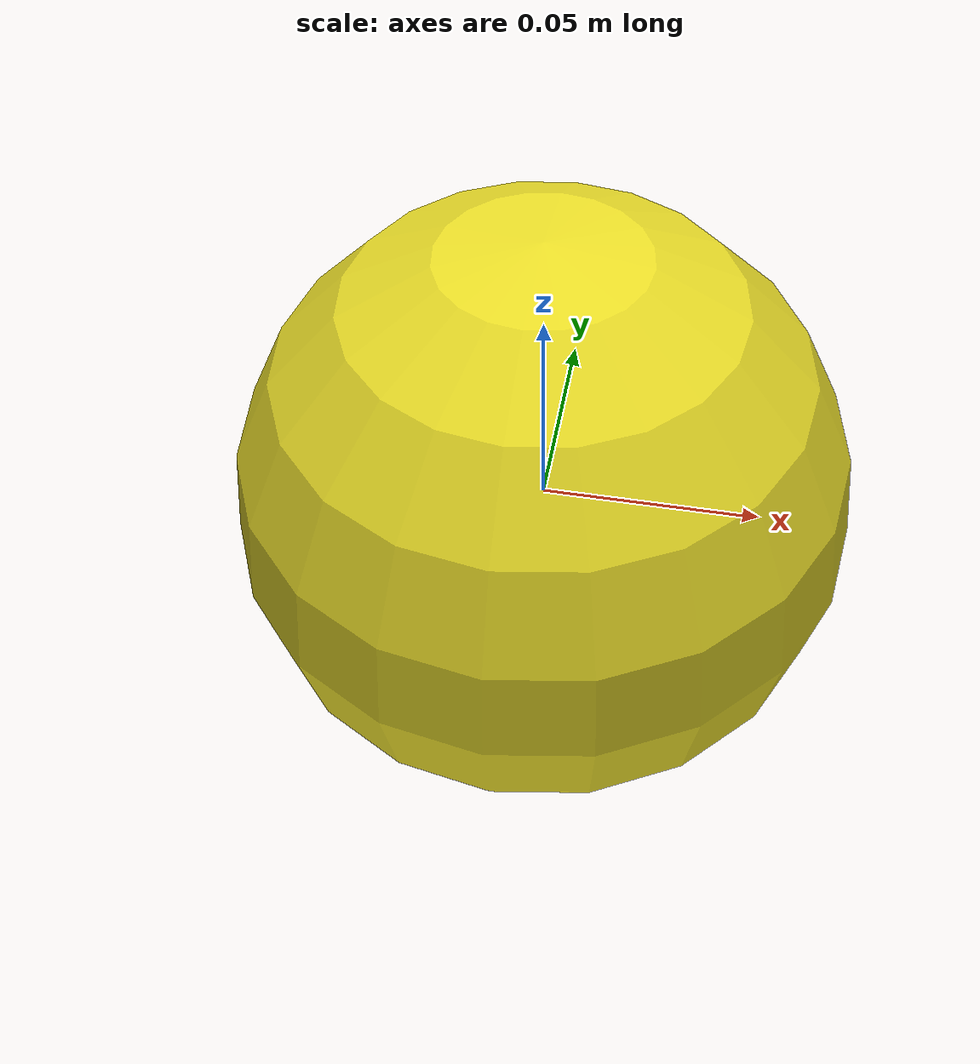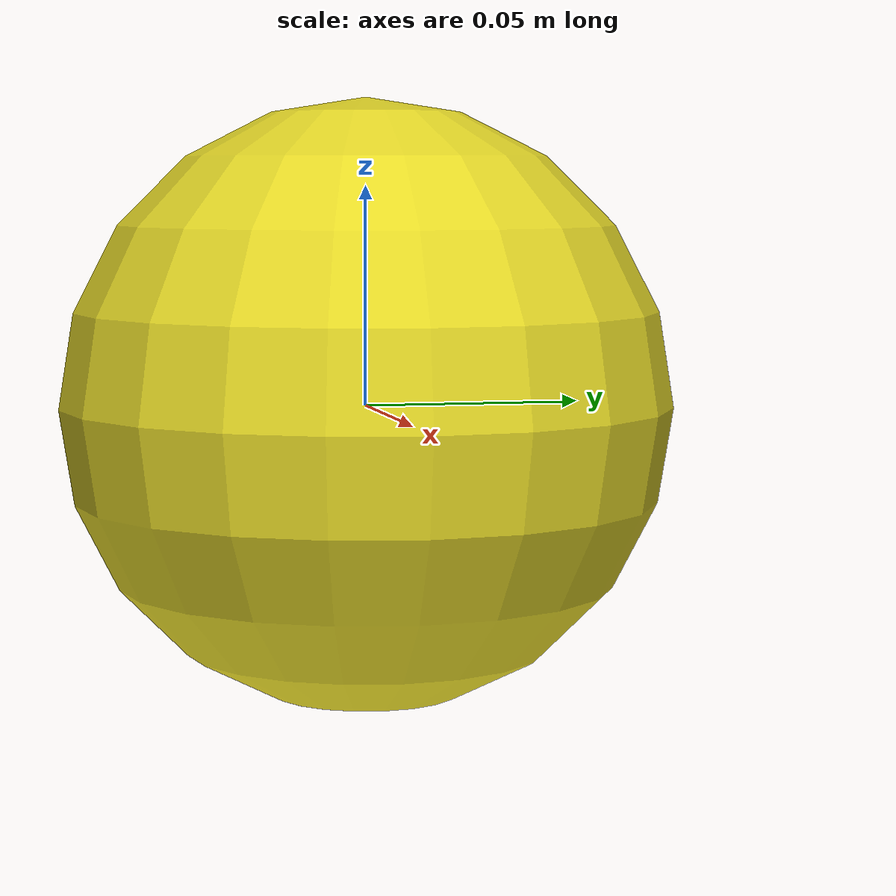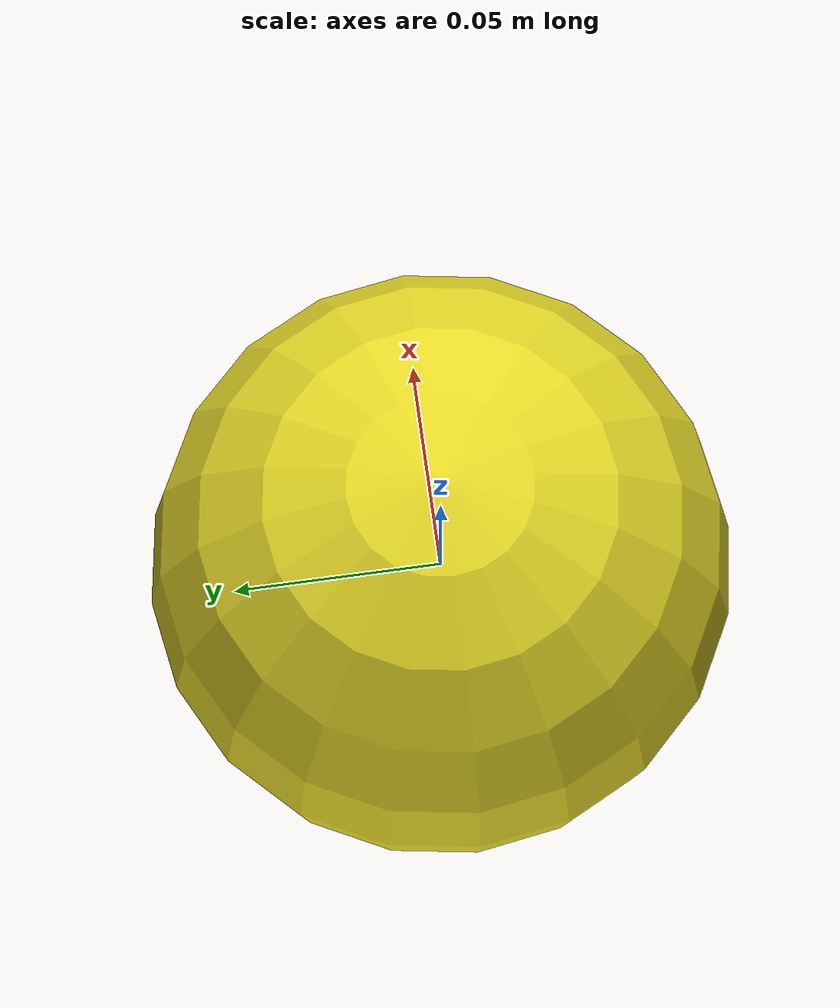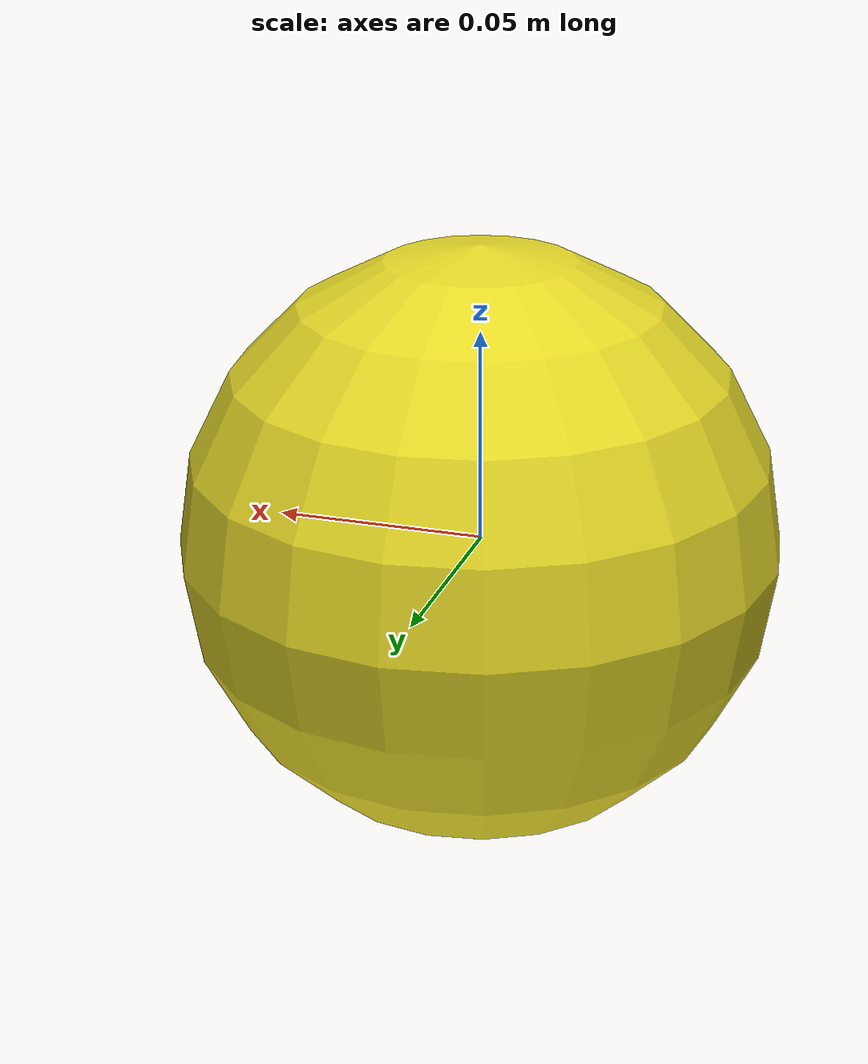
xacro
<?xml version="1.0"?>
<robot name="ball" xmlns:xacro="http://wiki.ros.org/xacro">

    <xacro:macro name="sphere_link" params="name r mass:=0.1 inertia_ratio:=1.0 *origin">
        <link name="${name}">
            <collision>
                <xacro:insert_block name="origin"/>
                <geometry>
                    <sphere radius="${r}"/>
                </geometry>
            </collision>
            <visual>
                <xacro:insert_block name="origin"/>
                <geometry>
                    <sphere radius="${r}"/>
                </geometry>
            </visual>
            <inertial>
                <mass value="${mass}"/>
                <xacro:insert_block name="origin"/>
                <inertia ixx="${inertia_ratio*(2/3)*mass*r*r}" ixy="0.0" ixz="0.0"
                         iyy="${inertia_ratio*(2/3)*mass*r*r}" iyz="0.0"
                         izz="${inertia_ratio*(2/3)*mass*r*r}"/>
            </inertial>
        </link>
    </xacro:macro>

    <xacro:sphere_link name="ball_link" r="0.07" mass="0.2" inertia_ratio="0.01">
        <origin xyz="0 0 0" rpy="0 0 0"/>
    </xacro:sphere_link>

    <gazebo reference="ball_link">
        <material>Gazebo/Yellow</material>
        <dampingFactor>0.0002</dampingFactor>
        <collision>
            <surface>
                <bounce>
                    <restitution_coefficient>0.8</restitution_coefficient>
                    <threshold>0.01</threshold>
                </bounce>
                <contact>
                    <ode>
                        <max_vel>10</max_vel>
                    </ode>
                </contact>
                <friction>
                    <torsional>
                        <coefficient>0.01</coefficient>
                        <surface_radius>0.1</surface_radius>
                        <use_patch_radius>false</use_patch_radius>
                    </torsional>
                </friction>
            </surface>
        </collision>
        <mu1>100.0</mu1>
        <mu2>100.0</mu2>
        <kp>500000</kp>
        <minDepth>0.001</minDepth>
    </gazebo>

    <gazebo>
        <plugin name="large_wz" filename="libInitialVelocityPlugin.so">
            <linear>$(arg vel_x) $(arg vel_y) $(arg vel_z)</linear>
            <angular>0 0 0</angular>
        </plugin>
    </gazebo>

</robot>
